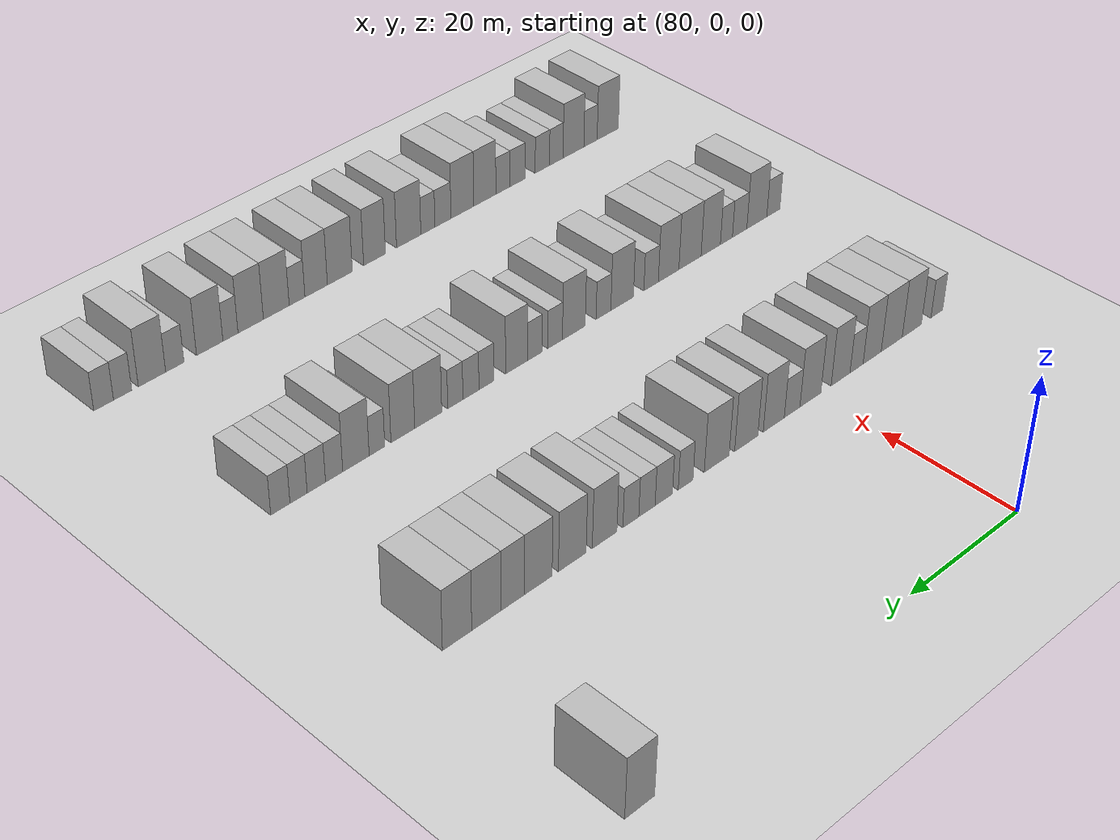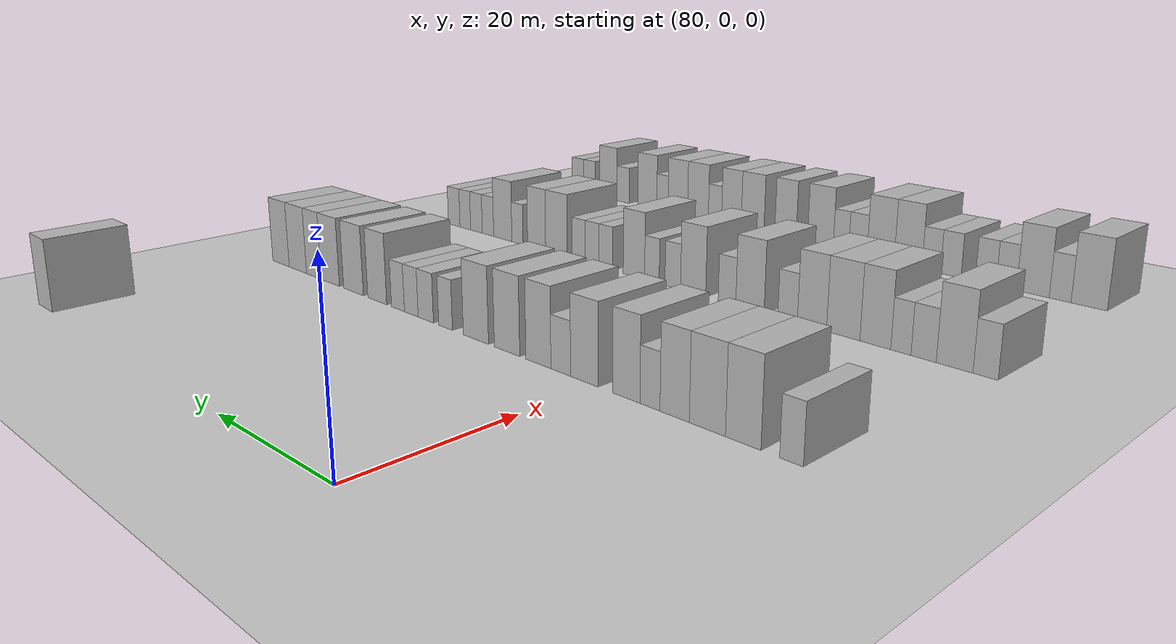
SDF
<sdf version="1.6">
 <world name="default">
  <include>
   <name>ground_plane_2</name>
   <uri>model://HANNAS_ground_plane</uri>
   <pose>100 0 0  0 0 0</pose>
  </include>
  <model name="building_579">
   <static>1</static>
   <pose>85.0000 64.0265 0 0.000000 0.000000 0.000000</pose>
   <link name="link">
    <pose>0 0 4.50 0 0 0</pose>
    <collision name="collision"><geometry><box><size>10.0000 4.3889 9.0000</size></box></geometry></collision>
    <visual name="visual">
     <cast_shadows>0</cast_shadows>
     <geometry><box><size>10.0000 4.3889 9.0000</size></box></geometry>
     <material>
      <script>
       <uri>model://HANNAS_wall/materials/scripts</uri>
       <uri>model://HANNAS_wall/materials/textures</uri>
       <name>vrc/HANNAS_wall</name>
      </script>
     </material>
    </visual>
   </link>
  </model>
  <model name="building_792">
   <static>1</static>
   <pose>115.0000 -23.9826 0 0.000000 0.000000 0.000000</pose>
   <link name="link">
    <pose>0 0 3.00 0 0 0</pose>
    <collision name="collision"><geometry><box><size>10.0000 2.4876 6.0000</size></box></geometry></collision>
    <visual name="visual">
     <cast_shadows>0</cast_shadows>
     <geometry><box><size>10.0000 2.4876 6.0000</size></box></geometry>
     <material>
      <script>
       <uri>model://HANNAS_wall/materials/scripts</uri>
       <uri>model://HANNAS_wall/materials/textures</uri>
       <name>vrc/HANNAS_wall</name>
      </script>
     </material>
    </visual>
   </link>
  </model>
  <model name="building_793">
   <static>1</static>
   <pose>115.0000 -18.7498 0 0.000000 0.000000 0.000000</pose>
   <link name="link">
    <pose>0 0 4.50 0 0 0</pose>
    <collision name="collision"><geometry><box><size>10.0000 3.9781 9.0000</size></box></geometry></collision>
    <visual name="visual">
     <cast_shadows>0</cast_shadows>
     <geometry><box><size>10.0000 3.9781 9.0000</size></box></geometry>
     <material>
      <script>
       <uri>model://HANNAS_wall/materials/scripts</uri>
       <uri>model://HANNAS_wall/materials/textures</uri>
       <name>vrc/HANNAS_wall</name>
      </script>
     </material>
    </visual>
   </link>
  </model>
  <model name="building_794">
   <static>1</static>
   <pose>115.0000 -14.6204 0 0.000000 0.000000 0.000000</pose>
   <link name="link">
    <pose>0 0 4.50 0 0 0</pose>
    <collision name="collision"><geometry><box><size>10.0000 4.2806 9.0000</size></box></geometry></collision>
    <visual name="visual">
     <cast_shadows>0</cast_shadows>
     <geometry><box><size>10.0000 4.2806 9.0000</size></box></geometry>
     <material>
      <script>
       <uri>model://HANNAS_wall/materials/scripts</uri>
       <uri>model://HANNAS_wall/materials/textures</uri>
       <name>vrc/HANNAS_wall</name>
      </script>
     </material>
    </visual>
   </link>
  </model>
  <model name="building_795">
   <static>1</static>
   <pose>115.0000 -10.6556 0 0.000000 0.000000 0.000000</pose>
   <link name="link">
    <pose>0 0 4.50 0 0 0</pose>
    <collision name="collision"><geometry><box><size>10.0000 3.6491 9.0000</size></box></geometry></collision>
    <visual name="visual">
     <cast_shadows>0</cast_shadows>
     <geometry><box><size>10.0000 3.6491 9.0000</size></box></geometry>
     <material>
      <script>
       <uri>model://HANNAS_wall/materials/scripts</uri>
       <uri>model://HANNAS_wall/materials/textures</uri>
       <name>vrc/HANNAS_wall</name>
      </script>
     </material>
    </visual>
   </link>
  </model>
  <model name="building_796">
   <static>1</static>
   <pose>115.0000 -7.5349 0 0.000000 0.000000 0.000000</pose>
   <link name="link">
    <pose>0 0 3.00 0 0 0</pose>
    <collision name="collision"><geometry><box><size>10.0000 2.5921 6.0000</size></box></geometry></collision>
    <visual name="visual">
     <cast_shadows>0</cast_shadows>
     <geometry><box><size>10.0000 2.5921 6.0000</size></box></geometry>
     <material>
      <script>
       <uri>model://HANNAS_wall/materials/scripts</uri>
       <uri>model://HANNAS_wall/materials/textures</uri>
       <name>vrc/HANNAS_wall</name>
      </script>
     </material>
    </visual>
   </link>
  </model>
  <model name="building_797">
   <static>1</static>
   <pose>115.0000 -4.3866 0 0.000000 0.000000 0.000000</pose>
   <link name="link">
    <pose>0 0 4.50 0 0 0</pose>
    <collision name="collision"><geometry><box><size>10.0000 3.7046 9.0000</size></box></geometry></collision>
    <visual name="visual">
     <cast_shadows>0</cast_shadows>
     <geometry><box><size>10.0000 3.7046 9.0000</size></box></geometry>
     <material>
      <script>
       <uri>model://HANNAS_wall/materials/scripts</uri>
       <uri>model://HANNAS_wall/materials/textures</uri>
       <name>vrc/HANNAS_wall</name>
      </script>
     </material>
    </visual>
   </link>
  </model>
  <model name="building_798">
   <static>1</static>
   <pose>115.0000 1.4691 0 0.000000 0.000000 0.000000</pose>
   <link name="link">
    <pose>0 0 4.50 0 0 0</pose>
    <collision name="collision"><geometry><box><size>10.0000 4.0068 9.0000</size></box></geometry></collision>
    <visual name="visual">
     <cast_shadows>0</cast_shadows>
     <geometry><box><size>10.0000 4.0068 9.0000</size></box></geometry>
     <material>
      <script>
       <uri>model://HANNAS_wall/materials/scripts</uri>
       <uri>model://HANNAS_wall/materials/textures</uri>
       <name>vrc/HANNAS_wall</name>
      </script>
     </material>
    </visual>
   </link>
  </model>
  <model name="building_799">
   <static>1</static>
   <pose>115.0000 4.9550 0 0.000000 0.000000 0.000000</pose>
   <link name="link">
    <pose>0 0 3.00 0 0 0</pose>
    <collision name="collision"><geometry><box><size>10.0000 2.9650 6.0000</size></box></geometry></collision>
    <visual name="visual">
     <cast_shadows>0</cast_shadows>
     <geometry><box><size>10.0000 2.9650 6.0000</size></box></geometry>
     <material>
      <script>
       <uri>model://HANNAS_wall/materials/scripts</uri>
       <uri>model://HANNAS_wall/materials/textures</uri>
       <name>vrc/HANNAS_wall</name>
      </script>
     </material>
    </visual>
   </link>
  </model>
  <model name="building_800">
   <static>1</static>
   <pose>115.0000 8.4011 0 0.000000 0.000000 0.000000</pose>
   <link name="link">
    <pose>0 0 4.50 0 0 0</pose>
    <collision name="collision"><geometry><box><size>10.0000 3.9271 9.0000</size></box></geometry></collision>
    <visual name="visual">
     <cast_shadows>0</cast_shadows>
     <geometry><box><size>10.0000 3.9271 9.0000</size></box></geometry>
     <material>
      <script>
       <uri>model://HANNAS_wall/materials/scripts</uri>
       <uri>model://HANNAS_wall/materials/textures</uri>
       <name>vrc/HANNAS_wall</name>
      </script>
     </material>
    </visual>
   </link>
  </model>
  <model name="building_801">
   <static>1</static>
   <pose>115.0000 13.4801 0 0.000000 0.000000 0.000000</pose>
   <link name="link">
    <pose>0 0 4.50 0 0 0</pose>
    <collision name="collision"><geometry><box><size>10.0000 4.2310 9.0000</size></box></geometry></collision>
    <visual name="visual">
     <cast_shadows>0</cast_shadows>
     <geometry><box><size>10.0000 4.2310 9.0000</size></box></geometry>
     <material>
      <script>
       <uri>model://HANNAS_wall/materials/scripts</uri>
       <uri>model://HANNAS_wall/materials/textures</uri>
       <name>vrc/HANNAS_wall</name>
      </script>
     </material>
    </visual>
   </link>
  </model>
  <model name="building_802">
   <static>1</static>
   <pose>115.0000 18.8192 0 0.000000 0.000000 0.000000</pose>
   <link name="link">
    <pose>0 0 4.50 0 0 0</pose>
    <collision name="collision"><geometry><box><size>10.0000 4.4473 9.0000</size></box></geometry></collision>
    <visual name="visual">
     <cast_shadows>0</cast_shadows>
     <geometry><box><size>10.0000 4.4473 9.0000</size></box></geometry>
     <material>
      <script>
       <uri>model://HANNAS_wall/materials/scripts</uri>
       <uri>model://HANNAS_wall/materials/textures</uri>
       <name>vrc/HANNAS_wall</name>
      </script>
     </material>
    </visual>
   </link>
  </model>
  <model name="building_803">
   <static>1</static>
   <pose>115.0000 24.3301 0 0.000000 0.000000 0.000000</pose>
   <link name="link">
    <pose>0 0 3.00 0 0 0</pose>
    <collision name="collision"><geometry><box><size>10.0000 2.5745 6.0000</size></box></geometry></collision>
    <visual name="visual">
     <cast_shadows>0</cast_shadows>
     <geometry><box><size>10.0000 2.5745 6.0000</size></box></geometry>
     <material>
      <script>
       <uri>model://HANNAS_wall/materials/scripts</uri>
       <uri>model://HANNAS_wall/materials/textures</uri>
       <name>vrc/HANNAS_wall</name>
      </script>
     </material>
    </visual>
   </link>
  </model>
  <model name="building_804">
   <static>1</static>
   <pose>115.0000 28.1102 0 0.000000 0.000000 0.000000</pose>
   <link name="link">
    <pose>0 0 3.00 0 0 0</pose>
    <collision name="collision"><geometry><box><size>10.0000 2.9857 6.0000</size></box></geometry></collision>
    <visual name="visual">
     <cast_shadows>0</cast_shadows>
     <geometry><box><size>10.0000 2.9857 6.0000</size></box></geometry>
     <material>
      <script>
       <uri>model://HANNAS_wall/materials/scripts</uri>
       <uri>model://HANNAS_wall/materials/textures</uri>
       <name>vrc/HANNAS_wall</name>
      </script>
     </material>
    </visual>
   </link>
  </model>
  <model name="building_805">
   <static>1</static>
   <pose>115.0000 30.9872 0 0.000000 0.000000 0.000000</pose>
   <link name="link">
    <pose>0 0 3.00 0 0 0</pose>
    <collision name="collision"><geometry><box><size>10.0000 2.7683 6.0000</size></box></geometry></collision>
    <visual name="visual">
     <cast_shadows>0</cast_shadows>
     <geometry><box><size>10.0000 2.7683 6.0000</size></box></geometry>
     <material>
      <script>
       <uri>model://HANNAS_wall/materials/scripts</uri>
       <uri>model://HANNAS_wall/materials/textures</uri>
       <name>vrc/HANNAS_wall</name>
      </script>
     </material>
    </visual>
   </link>
  </model>
  <model name="building_806">
   <static>1</static>
   <pose>115.0000 33.7061 0 0.000000 0.000000 0.000000</pose>
   <link name="link">
    <pose>0 0 3.00 0 0 0</pose>
    <collision name="collision"><geometry><box><size>10.0000 2.6695 6.0000</size></box></geometry></collision>
    <visual name="visual">
     <cast_shadows>0</cast_shadows>
     <geometry><box><size>10.0000 2.6695 6.0000</size></box></geometry>
     <material>
      <script>
       <uri>model://HANNAS_wall/materials/scripts</uri>
       <uri>model://HANNAS_wall/materials/textures</uri>
       <name>vrc/HANNAS_wall</name>
      </script>
     </material>
    </visual>
   </link>
  </model>
  <model name="building_807">
   <static>1</static>
   <pose>115.0000 38.0735 0 0.000000 0.000000 0.000000</pose>
   <link name="link">
    <pose>0 0 4.50 0 0 0</pose>
    <collision name="collision"><geometry><box><size>10.0000 4.0654 9.0000</size></box></geometry></collision>
    <visual name="visual">
     <cast_shadows>0</cast_shadows>
     <geometry><box><size>10.0000 4.0654 9.0000</size></box></geometry>
     <material>
      <script>
       <uri>model://HANNAS_wall/materials/scripts</uri>
       <uri>model://HANNAS_wall/materials/textures</uri>
       <name>vrc/HANNAS_wall</name>
      </script>
     </material>
    </visual>
   </link>
  </model>
  <model name="building_808">
   <static>1</static>
   <pose>115.0000 43.3395 0 0.000000 0.000000 0.000000</pose>
   <link name="link">
    <pose>0 0 4.50 0 0 0</pose>
    <collision name="collision"><geometry><box><size>10.0000 4.4666 9.0000</size></box></geometry></collision>
    <visual name="visual">
     <cast_shadows>0</cast_shadows>
     <geometry><box><size>10.0000 4.4666 9.0000</size></box></geometry>
     <material>
      <script>
       <uri>model://HANNAS_wall/materials/scripts</uri>
       <uri>model://HANNAS_wall/materials/textures</uri>
       <name>vrc/HANNAS_wall</name>
      </script>
     </material>
    </visual>
   </link>
  </model>
  <model name="building_809">
   <static>1</static>
   <pose>115.0000 48.7580 0 0.000000 0.000000 0.000000</pose>
   <link name="link">
    <pose>0 0 4.50 0 0 0</pose>
    <collision name="collision"><geometry><box><size>10.0000 4.3704 9.0000</size></box></geometry></collision>
    <visual name="visual">
     <cast_shadows>0</cast_shadows>
     <geometry><box><size>10.0000 4.3704 9.0000</size></box></geometry>
     <material>
      <script>
       <uri>model://HANNAS_wall/materials/scripts</uri>
       <uri>model://HANNAS_wall/materials/textures</uri>
       <name>vrc/HANNAS_wall</name>
      </script>
     </material>
    </visual>
   </link>
  </model>
  <model name="building_810">
   <static>1</static>
   <pose>115.0000 52.7483 0 0.000000 0.000000 0.000000</pose>
   <link name="link">
    <pose>0 0 4.50 0 0 0</pose>
    <collision name="collision"><geometry><box><size>10.0000 3.6101 9.0000</size></box></geometry></collision>
    <visual name="visual">
     <cast_shadows>0</cast_shadows>
     <geometry><box><size>10.0000 3.6101 9.0000</size></box></geometry>
     <material>
      <script>
       <uri>model://HANNAS_wall/materials/scripts</uri>
       <uri>model://HANNAS_wall/materials/textures</uri>
       <name>vrc/HANNAS_wall</name>
      </script>
     </material>
    </visual>
   </link>
  </model>
  <model name="building_811">
   <static>1</static>
   <pose>115.0000 56.7813 0 0.000000 0.000000 0.000000</pose>
   <link name="link">
    <pose>0 0 4.50 0 0 0</pose>
    <collision name="collision"><geometry><box><size>10.0000 4.4560 9.0000</size></box></geometry></collision>
    <visual name="visual">
     <cast_shadows>0</cast_shadows>
     <geometry><box><size>10.0000 4.4560 9.0000</size></box></geometry>
     <material>
      <script>
       <uri>model://HANNAS_wall/materials/scripts</uri>
       <uri>model://HANNAS_wall/materials/textures</uri>
       <name>vrc/HANNAS_wall</name>
      </script>
     </material>
    </visual>
   </link>
  </model>
  <model name="building_812">
   <static>1</static>
   <pose>115.0000 61.1942 0 0.000000 0.000000 0.000000</pose>
   <link name="link">
    <pose>0 0 4.50 0 0 0</pose>
    <collision name="collision"><geometry><box><size>10.0000 4.3697 9.0000</size></box></geometry></collision>
    <visual name="visual">
     <cast_shadows>0</cast_shadows>
     <geometry><box><size>10.0000 4.3697 9.0000</size></box></geometry>
     <material>
      <script>
       <uri>model://HANNAS_wall/materials/scripts</uri>
       <uri>model://HANNAS_wall/materials/textures</uri>
       <name>vrc/HANNAS_wall</name>
      </script>
     </material>
    </visual>
   </link>
  </model>
  <model name="building_1002">
   <static>1</static>
   <pose>145.0000 -26.4612 0 0.000000 0.000000 0.000000</pose>
   <link name="link">
    <pose>0 0 3.00 0 0 0</pose>
    <collision name="collision"><geometry><box><size>10.0000 2.7451 6.0000</size></box></geometry></collision>
    <visual name="visual">
     <cast_shadows>0</cast_shadows>
     <geometry><box><size>10.0000 2.7451 6.0000</size></box></geometry>
     <material>
      <script>
       <uri>model://HANNAS_wall/materials/scripts</uri>
       <uri>model://HANNAS_wall/materials/textures</uri>
       <name>vrc/HANNAS_wall</name>
      </script>
     </material>
    </visual>
   </link>
  </model>
  <model name="building_1003">
   <static>1</static>
   <pose>145.0000 -23.0076 0 0.000000 0.000000 0.000000</pose>
   <link name="link">
    <pose>0 0 4.50 0 0 0</pose>
    <collision name="collision"><geometry><box><size>10.0000 4.1621 9.0000</size></box></geometry></collision>
    <visual name="visual">
     <cast_shadows>0</cast_shadows>
     <geometry><box><size>10.0000 4.1621 9.0000</size></box></geometry>
     <material>
      <script>
       <uri>model://HANNAS_wall/materials/scripts</uri>
       <uri>model://HANNAS_wall/materials/textures</uri>
       <name>vrc/HANNAS_wall</name>
      </script>
     </material>
    </visual>
   </link>
  </model>
  <model name="building_1004">
   <static>1</static>
   <pose>145.0000 -19.4413 0 0.000000 0.000000 0.000000</pose>
   <link name="link">
    <pose>0 0 3.00 0 0 0</pose>
    <collision name="collision"><geometry><box><size>10.0000 2.9705 6.0000</size></box></geometry></collision>
    <visual name="visual">
     <cast_shadows>0</cast_shadows>
     <geometry><box><size>10.0000 2.9705 6.0000</size></box></geometry>
     <material>
      <script>
       <uri>model://HANNAS_wall/materials/scripts</uri>
       <uri>model://HANNAS_wall/materials/textures</uri>
       <name>vrc/HANNAS_wall</name>
      </script>
     </material>
    </visual>
   </link>
  </model>
  <model name="building_1005">
   <static>1</static>
   <pose>145.0000 -16.7261 0 0.000000 0.000000 0.000000</pose>
   <link name="link">
    <pose>0 0 3.00 0 0 0</pose>
    <collision name="collision"><geometry><box><size>10.0000 2.4598 6.0000</size></box></geometry></collision>
    <visual name="visual">
     <cast_shadows>0</cast_shadows>
     <geometry><box><size>10.0000 2.4598 6.0000</size></box></geometry>
     <material>
      <script>
       <uri>model://HANNAS_wall/materials/scripts</uri>
       <uri>model://HANNAS_wall/materials/textures</uri>
       <name>vrc/HANNAS_wall</name>
      </script>
     </material>
    </visual>
   </link>
  </model>
  <model name="building_1006">
   <static>1</static>
   <pose>145.0000 -13.5506 0 0.000000 0.000000 0.000000</pose>
   <link name="link">
    <pose>0 0 4.50 0 0 0</pose>
    <collision name="collision"><geometry><box><size>10.0000 3.8911 9.0000</size></box></geometry></collision>
    <visual name="visual">
     <cast_shadows>0</cast_shadows>
     <geometry><box><size>10.0000 3.8911 9.0000</size></box></geometry>
     <material>
      <script>
       <uri>model://HANNAS_wall/materials/scripts</uri>
       <uri>model://HANNAS_wall/materials/textures</uri>
       <name>vrc/HANNAS_wall</name>
      </script>
     </material>
    </visual>
   </link>
  </model>
  <model name="building_1007">
   <static>1</static>
   <pose>145.0000 -9.4038 0 0.000000 0.000000 0.000000</pose>
   <link name="link">
    <pose>0 0 4.50 0 0 0</pose>
    <collision name="collision"><geometry><box><size>10.0000 4.4026 9.0000</size></box></geometry></collision>
    <visual name="visual">
     <cast_shadows>0</cast_shadows>
     <geometry><box><size>10.0000 4.4026 9.0000</size></box></geometry>
     <material>
      <script>
       <uri>model://HANNAS_wall/materials/scripts</uri>
       <uri>model://HANNAS_wall/materials/textures</uri>
       <name>vrc/HANNAS_wall</name>
      </script>
     </material>
    </visual>
   </link>
  </model>
  <model name="building_1008">
   <static>1</static>
   <pose>145.0000 -5.1908 0 0.000000 0.000000 0.000000</pose>
   <link name="link">
    <pose>0 0 4.50 0 0 0</pose>
    <collision name="collision"><geometry><box><size>10.0000 4.0234 9.0000</size></box></geometry></collision>
    <visual name="visual">
     <cast_shadows>0</cast_shadows>
     <geometry><box><size>10.0000 4.0234 9.0000</size></box></geometry>
     <material>
      <script>
       <uri>model://HANNAS_wall/materials/scripts</uri>
       <uri>model://HANNAS_wall/materials/textures</uri>
       <name>vrc/HANNAS_wall</name>
      </script>
     </material>
    </visual>
   </link>
  </model>
  <model name="building_1009">
   <static>1</static>
   <pose>145.0000 -1.7837 0 0.000000 0.000000 0.000000</pose>
   <link name="link">
    <pose>0 0 3.00 0 0 0</pose>
    <collision name="collision"><geometry><box><size>10.0000 2.7908 6.0000</size></box></geometry></collision>
    <visual name="visual">
     <cast_shadows>0</cast_shadows>
     <geometry><box><size>10.0000 2.7908 6.0000</size></box></geometry>
     <material>
      <script>
       <uri>model://HANNAS_wall/materials/scripts</uri>
       <uri>model://HANNAS_wall/materials/textures</uri>
       <name>vrc/HANNAS_wall</name>
      </script>
     </material>
    </visual>
   </link>
  </model>
  <model name="building_1010">
   <static>1</static>
   <pose>145.0000 3.7500 0 0.000000 0.000000 0.000000</pose>
   <link name="link">
    <pose>0 0 4.50 0 0 0</pose>
    <collision name="collision"><geometry><box><size>10.0000 4.2766 9.0000</size></box></geometry></collision>
    <visual name="visual">
     <cast_shadows>0</cast_shadows>
     <geometry><box><size>10.0000 4.2766 9.0000</size></box></geometry>
     <material>
      <script>
       <uri>model://HANNAS_wall/materials/scripts</uri>
       <uri>model://HANNAS_wall/materials/textures</uri>
       <name>vrc/HANNAS_wall</name>
      </script>
     </material>
    </visual>
   </link>
  </model>
  <model name="building_1011">
   <static>1</static>
   <pose>145.0000 7.2660 0 0.000000 0.000000 0.000000</pose>
   <link name="link">
    <pose>0 0 3.00 0 0 0</pose>
    <collision name="collision"><geometry><box><size>10.0000 2.7556 6.0000</size></box></geometry></collision>
    <visual name="visual">
     <cast_shadows>0</cast_shadows>
     <geometry><box><size>10.0000 2.7556 6.0000</size></box></geometry>
     <material>
      <script>
       <uri>model://HANNAS_wall/materials/scripts</uri>
       <uri>model://HANNAS_wall/materials/textures</uri>
       <name>vrc/HANNAS_wall</name>
      </script>
     </material>
    </visual>
   </link>
  </model>
  <model name="building_1012">
   <static>1</static>
   <pose>145.0000 12.7238 0 0.000000 0.000000 0.000000</pose>
   <link name="link">
    <pose>0 0 4.50 0 0 0</pose>
    <collision name="collision"><geometry><box><size>10.0000 4.1600 9.0000</size></box></geometry></collision>
    <visual name="visual">
     <cast_shadows>0</cast_shadows>
     <geometry><box><size>10.0000 4.1600 9.0000</size></box></geometry>
     <material>
      <script>
       <uri>model://HANNAS_wall/materials/scripts</uri>
       <uri>model://HANNAS_wall/materials/textures</uri>
       <name>vrc/HANNAS_wall</name>
      </script>
     </material>
    </visual>
   </link>
  </model>
  <model name="building_1013">
   <static>1</static>
   <pose>145.0000 16.1285 0 0.000000 0.000000 0.000000</pose>
   <link name="link">
    <pose>0 0 3.00 0 0 0</pose>
    <collision name="collision"><geometry><box><size>10.0000 2.6494 6.0000</size></box></geometry></collision>
    <visual name="visual">
     <cast_shadows>0</cast_shadows>
     <geometry><box><size>10.0000 2.6494 6.0000</size></box></geometry>
     <material>
      <script>
       <uri>model://HANNAS_wall/materials/scripts</uri>
       <uri>model://HANNAS_wall/materials/textures</uri>
       <name>vrc/HANNAS_wall</name>
      </script>
     </material>
    </visual>
   </link>
  </model>
  <model name="building_1014">
   <static>1</static>
   <pose>145.0000 19.7431 0 0.000000 0.000000 0.000000</pose>
   <link name="link">
    <pose>0 0 3.00 0 0 0</pose>
    <collision name="collision"><geometry><box><size>10.0000 2.5797 6.0000</size></box></geometry></collision>
    <visual name="visual">
     <cast_shadows>0</cast_shadows>
     <geometry><box><size>10.0000 2.5797 6.0000</size></box></geometry>
     <material>
      <script>
       <uri>model://HANNAS_wall/materials/scripts</uri>
       <uri>model://HANNAS_wall/materials/textures</uri>
       <name>vrc/HANNAS_wall</name>
      </script>
     </material>
    </visual>
   </link>
  </model>
  <model name="building_1015">
   <static>1</static>
   <pose>145.0000 22.9806 0 0.000000 0.000000 0.000000</pose>
   <link name="link">
    <pose>0 0 4.50 0 0 0</pose>
    <collision name="collision"><geometry><box><size>10.0000 3.8953 9.0000</size></box></geometry></collision>
    <visual name="visual">
     <cast_shadows>0</cast_shadows>
     <geometry><box><size>10.0000 3.8953 9.0000</size></box></geometry>
     <material>
      <script>
       <uri>model://HANNAS_wall/materials/scripts</uri>
       <uri>model://HANNAS_wall/materials/textures</uri>
       <name>vrc/HANNAS_wall</name>
      </script>
     </material>
    </visual>
   </link>
  </model>
  <model name="building_1016">
   <static>1</static>
   <pose>145.0000 28.2254 0 0.000000 0.000000 0.000000</pose>
   <link name="link">
    <pose>0 0 3.00 0 0 0</pose>
    <collision name="collision"><geometry><box><size>10.0000 2.5943 6.0000</size></box></geometry></collision>
    <visual name="visual">
     <cast_shadows>0</cast_shadows>
     <geometry><box><size>10.0000 2.5943 6.0000</size></box></geometry>
     <material>
      <script>
       <uri>model://HANNAS_wall/materials/scripts</uri>
       <uri>model://HANNAS_wall/materials/textures</uri>
       <name>vrc/HANNAS_wall</name>
      </script>
     </material>
    </visual>
   </link>
  </model>
  <model name="building_1017">
   <static>1</static>
   <pose>145.0000 30.8859 0 0.000000 0.000000 0.000000</pose>
   <link name="link">
    <pose>0 0 3.00 0 0 0</pose>
    <collision name="collision"><geometry><box><size>10.0000 2.7268 6.0000</size></box></geometry></collision>
    <visual name="visual">
     <cast_shadows>0</cast_shadows>
     <geometry><box><size>10.0000 2.7268 6.0000</size></box></geometry>
     <material>
      <script>
       <uri>model://HANNAS_wall/materials/scripts</uri>
       <uri>model://HANNAS_wall/materials/textures</uri>
       <name>vrc/HANNAS_wall</name>
      </script>
     </material>
    </visual>
   </link>
  </model>
  <model name="building_1018">
   <static>1</static>
   <pose>145.0000 33.5300 0 0.000000 0.000000 0.000000</pose>
   <link name="link">
    <pose>0 0 3.00 0 0 0</pose>
    <collision name="collision"><geometry><box><size>10.0000 2.5614 6.0000</size></box></geometry></collision>
    <visual name="visual">
     <cast_shadows>0</cast_shadows>
     <geometry><box><size>10.0000 2.5614 6.0000</size></box></geometry>
     <material>
      <script>
       <uri>model://HANNAS_wall/materials/scripts</uri>
       <uri>model://HANNAS_wall/materials/textures</uri>
       <name>vrc/HANNAS_wall</name>
      </script>
     </material>
    </visual>
   </link>
  </model>
  <model name="building_1019">
   <static>1</static>
   <pose>145.0000 38.0429 0 0.000000 0.000000 0.000000</pose>
   <link name="link">
    <pose>0 0 4.50 0 0 0</pose>
    <collision name="collision"><geometry><box><size>10.0000 4.4644 9.0000</size></box></geometry></collision>
    <visual name="visual">
     <cast_shadows>0</cast_shadows>
     <geometry><box><size>10.0000 4.4644 9.0000</size></box></geometry>
     <material>
      <script>
       <uri>model://HANNAS_wall/materials/scripts</uri>
       <uri>model://HANNAS_wall/materials/textures</uri>
       <name>vrc/HANNAS_wall</name>
      </script>
     </material>
    </visual>
   </link>
  </model>
  <model name="building_1020">
   <static>1</static>
   <pose>145.0000 42.2119 0 0.000000 0.000000 0.000000</pose>
   <link name="link">
    <pose>0 0 4.50 0 0 0</pose>
    <collision name="collision"><geometry><box><size>10.0000 3.8736 9.0000</size></box></geometry></collision>
    <visual name="visual">
     <cast_shadows>0</cast_shadows>
     <geometry><box><size>10.0000 3.8736 9.0000</size></box></geometry>
     <material>
      <script>
       <uri>model://HANNAS_wall/materials/scripts</uri>
       <uri>model://HANNAS_wall/materials/textures</uri>
       <name>vrc/HANNAS_wall</name>
      </script>
     </material>
    </visual>
   </link>
  </model>
  <model name="building_1021">
   <static>1</static>
   <pose>145.0000 46.3951 0 0.000000 0.000000 0.000000</pose>
   <link name="link">
    <pose>0 0 3.00 0 0 0</pose>
    <collision name="collision"><geometry><box><size>10.0000 2.4928 6.0000</size></box></geometry></collision>
    <visual name="visual">
     <cast_shadows>0</cast_shadows>
     <geometry><box><size>10.0000 2.4928 6.0000</size></box></geometry>
     <material>
      <script>
       <uri>model://HANNAS_wall/materials/scripts</uri>
       <uri>model://HANNAS_wall/materials/textures</uri>
       <name>vrc/HANNAS_wall</name>
      </script>
     </material>
    </visual>
   </link>
  </model>
  <model name="building_1022">
   <static>1</static>
   <pose>145.0000 49.7278 0 0.000000 0.000000 0.000000</pose>
   <link name="link">
    <pose>0 0 4.50 0 0 0</pose>
    <collision name="collision"><geometry><box><size>10.0000 4.1728 9.0000</size></box></geometry></collision>
    <visual name="visual">
     <cast_shadows>0</cast_shadows>
     <geometry><box><size>10.0000 4.1728 9.0000</size></box></geometry>
     <material>
      <script>
       <uri>model://HANNAS_wall/materials/scripts</uri>
       <uri>model://HANNAS_wall/materials/textures</uri>
       <name>vrc/HANNAS_wall</name>
      </script>
     </material>
    </visual>
   </link>
  </model>
  <model name="building_1023">
   <static>1</static>
   <pose>145.0000 53.1578 0 0.000000 0.000000 0.000000</pose>
   <link name="link">
    <pose>0 0 3.00 0 0 0</pose>
    <collision name="collision"><geometry><box><size>10.0000 2.6871 6.0000</size></box></geometry></collision>
    <visual name="visual">
     <cast_shadows>0</cast_shadows>
     <geometry><box><size>10.0000 2.6871 6.0000</size></box></geometry>
     <material>
      <script>
       <uri>model://HANNAS_wall/materials/scripts</uri>
       <uri>model://HANNAS_wall/materials/textures</uri>
       <name>vrc/HANNAS_wall</name>
      </script>
     </material>
    </visual>
   </link>
  </model>
  <model name="building_1024">
   <static>1</static>
   <pose>145.0000 55.9098 0 0.000000 0.000000 0.000000</pose>
   <link name="link">
    <pose>0 0 3.00 0 0 0</pose>
    <collision name="collision"><geometry><box><size>10.0000 2.8169 6.0000</size></box></geometry></collision>
    <visual name="visual">
     <cast_shadows>0</cast_shadows>
     <geometry><box><size>10.0000 2.8169 6.0000</size></box></geometry>
     <material>
      <script>
       <uri>model://HANNAS_wall/materials/scripts</uri>
       <uri>model://HANNAS_wall/materials/textures</uri>
       <name>vrc/HANNAS_wall</name>
      </script>
     </material>
    </visual>
   </link>
  </model>
  <model name="building_1025">
   <static>1</static>
   <pose>145.0000 58.6270 0 0.000000 0.000000 0.000000</pose>
   <link name="link">
    <pose>0 0 3.00 0 0 0</pose>
    <collision name="collision"><geometry><box><size>10.0000 2.6175 6.0000</size></box></geometry></collision>
    <visual name="visual">
     <cast_shadows>0</cast_shadows>
     <geometry><box><size>10.0000 2.6175 6.0000</size></box></geometry>
     <material>
      <script>
       <uri>model://HANNAS_wall/materials/scripts</uri>
       <uri>model://HANNAS_wall/materials/textures</uri>
       <name>vrc/HANNAS_wall</name>
      </script>
     </material>
    </visual>
   </link>
  </model>
  <model name="building_1026">
   <static>1</static>
   <pose>145.0000 61.3862 0 0.000000 0.000000 0.000000</pose>
   <link name="link">
    <pose>0 0 3.00 0 0 0</pose>
    <collision name="collision"><geometry><box><size>10.0000 2.9009 6.0000</size></box></geometry></collision>
    <visual name="visual">
     <cast_shadows>0</cast_shadows>
     <geometry><box><size>10.0000 2.9009 6.0000</size></box></geometry>
     <material>
      <script>
       <uri>model://HANNAS_wall/materials/scripts</uri>
       <uri>model://HANNAS_wall/materials/textures</uri>
       <name>vrc/HANNAS_wall</name>
      </script>
     </material>
    </visual>
   </link>
  </model>
  <model name="building_1238">
   <static>1</static>
   <pose>175.0000 -24.6304 0 0.000000 0.000000 0.000000</pose>
   <link name="link">
    <pose>0 0 4.50 0 0 0</pose>
    <collision name="collision"><geometry><box><size>10.0000 4.4018 9.0000</size></box></geometry></collision>
    <visual name="visual">
     <cast_shadows>0</cast_shadows>
     <geometry><box><size>10.0000 4.4018 9.0000</size></box></geometry>
     <material>
      <script>
       <uri>model://HANNAS_wall/materials/scripts</uri>
       <uri>model://HANNAS_wall/materials/textures</uri>
       <name>vrc/HANNAS_wall</name>
      </script>
     </material>
    </visual>
   </link>
  </model>
  <model name="building_1239">
   <static>1</static>
   <pose>175.0000 -21.0581 0 0.000000 0.000000 0.000000</pose>
   <link name="link">
    <pose>0 0 3.00 0 0 0</pose>
    <collision name="collision"><geometry><box><size>10.0000 2.7430 6.0000</size></box></geometry></collision>
    <visual name="visual">
     <cast_shadows>0</cast_shadows>
     <geometry><box><size>10.0000 2.7430 6.0000</size></box></geometry>
     <material>
      <script>
       <uri>model://HANNAS_wall/materials/scripts</uri>
       <uri>model://HANNAS_wall/materials/textures</uri>
       <name>vrc/HANNAS_wall</name>
      </script>
     </material>
    </visual>
   </link>
  </model>
  <model name="building_1240">
   <static>1</static>
   <pose>175.0000 -17.5665 0 0.000000 0.000000 0.000000</pose>
   <link name="link">
    <pose>0 0 4.50 0 0 0</pose>
    <collision name="collision"><geometry><box><size>10.0000 4.2402 9.0000</size></box></geometry></collision>
    <visual name="visual">
     <cast_shadows>0</cast_shadows>
     <geometry><box><size>10.0000 4.2402 9.0000</size></box></geometry>
     <material>
      <script>
       <uri>model://HANNAS_wall/materials/scripts</uri>
       <uri>model://HANNAS_wall/materials/textures</uri>
       <name>vrc/HANNAS_wall</name>
      </script>
     </material>
    </visual>
   </link>
  </model>
  <model name="building_1241">
   <static>1</static>
   <pose>175.0000 -14.0798 0 0.000000 0.000000 0.000000</pose>
   <link name="link">
    <pose>0 0 3.00 0 0 0</pose>
    <collision name="collision"><geometry><box><size>10.0000 2.7332 6.0000</size></box></geometry></collision>
    <visual name="visual">
     <cast_shadows>0</cast_shadows>
     <geometry><box><size>10.0000 2.7332 6.0000</size></box></geometry>
     <material>
      <script>
       <uri>model://HANNAS_wall/materials/scripts</uri>
       <uri>model://HANNAS_wall/materials/textures</uri>
       <name>vrc/HANNAS_wall</name>
      </script>
     </material>
    </visual>
   </link>
  </model>
  <model name="building_1242">
   <static>1</static>
   <pose>175.0000 -11.2792 0 0.000000 0.000000 0.000000</pose>
   <link name="link">
    <pose>0 0 3.00 0 0 0</pose>
    <collision name="collision"><geometry><box><size>10.0000 2.8680 6.0000</size></box></geometry></collision>
    <visual name="visual">
     <cast_shadows>0</cast_shadows>
     <geometry><box><size>10.0000 2.8680 6.0000</size></box></geometry>
     <material>
      <script>
       <uri>model://HANNAS_wall/materials/scripts</uri>
       <uri>model://HANNAS_wall/materials/textures</uri>
       <name>vrc/HANNAS_wall</name>
      </script>
     </material>
    </visual>
   </link>
  </model>
  <model name="building_1243">
   <static>1</static>
   <pose>175.0000 -6.3679 0 0.000000 0.000000 0.000000</pose>
   <link name="link">
    <pose>0 0 3.00 0 0 0</pose>
    <collision name="collision"><geometry><box><size>10.0000 2.9544 6.0000</size></box></geometry></collision>
    <visual name="visual">
     <cast_shadows>0</cast_shadows>
     <geometry><box><size>10.0000 2.9544 6.0000</size></box></geometry>
     <material>
      <script>
       <uri>model://HANNAS_wall/materials/scripts</uri>
       <uri>model://HANNAS_wall/materials/textures</uri>
       <name>vrc/HANNAS_wall</name>
      </script>
     </material>
    </visual>
   </link>
  </model>
  <model name="building_1244">
   <static>1</static>
   <pose>175.0000 -3.5135 0 0.000000 0.000000 0.000000</pose>
   <link name="link">
    <pose>0 0 3.00 0 0 0</pose>
    <collision name="collision"><geometry><box><size>10.0000 2.7545 6.0000</size></box></geometry></collision>
    <visual name="visual">
     <cast_shadows>0</cast_shadows>
     <geometry><box><size>10.0000 2.7545 6.0000</size></box></geometry>
     <material>
      <script>
       <uri>model://HANNAS_wall/materials/scripts</uri>
       <uri>model://HANNAS_wall/materials/textures</uri>
       <name>vrc/HANNAS_wall</name>
      </script>
     </material>
    </visual>
   </link>
  </model>
  <model name="building_1245">
   <static>1</static>
   <pose>175.0000 -0.0137 0 0.000000 0.000000 0.000000</pose>
   <link name="link">
    <pose>0 0 4.50 0 0 0</pose>
    <collision name="collision"><geometry><box><size>10.0000 4.2450 9.0000</size></box></geometry></collision>
    <visual name="visual">
     <cast_shadows>0</cast_shadows>
     <geometry><box><size>10.0000 4.2450 9.0000</size></box></geometry>
     <material>
      <script>
       <uri>model://HANNAS_wall/materials/scripts</uri>
       <uri>model://HANNAS_wall/materials/textures</uri>
       <name>vrc/HANNAS_wall</name>
      </script>
     </material>
    </visual>
   </link>
  </model>
  <model name="building_1246">
   <static>1</static>
   <pose>175.0000 4.2610 0 0.000000 0.000000 0.000000</pose>
   <link name="link">
    <pose>0 0 4.50 0 0 0</pose>
    <collision name="collision"><geometry><box><size>10.0000 4.3045 9.0000</size></box></geometry></collision>
    <visual name="visual">
     <cast_shadows>0</cast_shadows>
     <geometry><box><size>10.0000 4.3045 9.0000</size></box></geometry>
     <material>
      <script>
       <uri>model://HANNAS_wall/materials/scripts</uri>
       <uri>model://HANNAS_wall/materials/textures</uri>
       <name>vrc/HANNAS_wall</name>
      </script>
     </material>
    </visual>
   </link>
  </model>
  <model name="building_1247">
   <static>1</static>
   <pose>175.0000 7.9091 0 0.000000 0.000000 0.000000</pose>
   <link name="link">
    <pose>0 0 3.00 0 0 0</pose>
    <collision name="collision"><geometry><box><size>10.0000 2.9919 6.0000</size></box></geometry></collision>
    <visual name="visual">
     <cast_shadows>0</cast_shadows>
     <geometry><box><size>10.0000 2.9919 6.0000</size></box></geometry>
     <material>
      <script>
       <uri>model://HANNAS_wall/materials/scripts</uri>
       <uri>model://HANNAS_wall/materials/textures</uri>
       <name>vrc/HANNAS_wall</name>
      </script>
     </material>
    </visual>
   </link>
  </model>
  <model name="building_1248">
   <static>1</static>
   <pose>175.0000 10.7073 0 0.000000 0.000000 0.000000</pose>
   <link name="link">
    <pose>0 0 3.00 0 0 0</pose>
    <collision name="collision"><geometry><box><size>10.0000 2.6045 6.0000</size></box></geometry></collision>
    <visual name="visual">
     <cast_shadows>0</cast_shadows>
     <geometry><box><size>10.0000 2.6045 6.0000</size></box></geometry>
     <material>
      <script>
       <uri>model://HANNAS_wall/materials/scripts</uri>
       <uri>model://HANNAS_wall/materials/textures</uri>
       <name>vrc/HANNAS_wall</name>
      </script>
     </material>
    </visual>
   </link>
  </model>
  <model name="building_1249">
   <static>1</static>
   <pose>175.0000 14.2338 0 0.000000 0.000000 0.000000</pose>
   <link name="link">
    <pose>0 0 4.50 0 0 0</pose>
    <collision name="collision"><geometry><box><size>10.0000 4.4485 9.0000</size></box></geometry></collision>
    <visual name="visual">
     <cast_shadows>0</cast_shadows>
     <geometry><box><size>10.0000 4.4485 9.0000</size></box></geometry>
     <material>
      <script>
       <uri>model://HANNAS_wall/materials/scripts</uri>
       <uri>model://HANNAS_wall/materials/textures</uri>
       <name>vrc/HANNAS_wall</name>
      </script>
     </material>
    </visual>
   </link>
  </model>
  <model name="building_1250">
   <static>1</static>
   <pose>175.0000 20.4018 0 0.000000 0.000000 0.000000</pose>
   <link name="link">
    <pose>0 0 4.50 0 0 0</pose>
    <collision name="collision"><geometry><box><size>10.0000 3.8875 9.0000</size></box></geometry></collision>
    <visual name="visual">
     <cast_shadows>0</cast_shadows>
     <geometry><box><size>10.0000 3.8875 9.0000</size></box></geometry>
     <material>
      <script>
       <uri>model://HANNAS_wall/materials/scripts</uri>
       <uri>model://HANNAS_wall/materials/textures</uri>
       <name>vrc/HANNAS_wall</name>
      </script>
     </material>
    </visual>
   </link>
  </model>
  <model name="building_1251">
   <static>1</static>
   <pose>175.0000 26.5166 0 0.000000 0.000000 0.000000</pose>
   <link name="link">
    <pose>0 0 4.50 0 0 0</pose>
    <collision name="collision"><geometry><box><size>10.0000 4.3422 9.0000</size></box></geometry></collision>
    <visual name="visual">
     <cast_shadows>0</cast_shadows>
     <geometry><box><size>10.0000 4.3422 9.0000</size></box></geometry>
     <material>
      <script>
       <uri>model://HANNAS_wall/materials/scripts</uri>
       <uri>model://HANNAS_wall/materials/textures</uri>
       <name>vrc/HANNAS_wall</name>
      </script>
     </material>
    </visual>
   </link>
  </model>
  <model name="building_1252">
   <static>1</static>
   <pose>175.0000 30.6237 0 0.000000 0.000000 0.000000</pose>
   <link name="link">
    <pose>0 0 4.50 0 0 0</pose>
    <collision name="collision"><geometry><box><size>10.0000 3.8720 9.0000</size></box></geometry></collision>
    <visual name="visual">
     <cast_shadows>0</cast_shadows>
     <geometry><box><size>10.0000 3.8720 9.0000</size></box></geometry>
     <material>
      <script>
       <uri>model://HANNAS_wall/materials/scripts</uri>
       <uri>model://HANNAS_wall/materials/textures</uri>
       <name>vrc/HANNAS_wall</name>
      </script>
     </material>
    </visual>
   </link>
  </model>
  <model name="building_1253">
   <static>1</static>
   <pose>175.0000 33.8931 0 0.000000 0.000000 0.000000</pose>
   <link name="link">
    <pose>0 0 3.00 0 0 0</pose>
    <collision name="collision"><geometry><box><size>10.0000 2.6669 6.0000</size></box></geometry></collision>
    <visual name="visual">
     <cast_shadows>0</cast_shadows>
     <geometry><box><size>10.0000 2.6669 6.0000</size></box></geometry>
     <material>
      <script>
       <uri>model://HANNAS_wall/materials/scripts</uri>
       <uri>model://HANNAS_wall/materials/textures</uri>
       <name>vrc/HANNAS_wall</name>
      </script>
     </material>
    </visual>
   </link>
  </model>
  <model name="building_1254">
   <static>1</static>
   <pose>175.0000 37.3882 0 0.000000 0.000000 0.000000</pose>
   <link name="link">
    <pose>0 0 4.50 0 0 0</pose>
    <collision name="collision"><geometry><box><size>10.0000 4.3232 9.0000</size></box></geometry></collision>
    <visual name="visual">
     <cast_shadows>0</cast_shadows>
     <geometry><box><size>10.0000 4.3232 9.0000</size></box></geometry>
     <material>
      <script>
       <uri>model://HANNAS_wall/materials/scripts</uri>
       <uri>model://HANNAS_wall/materials/textures</uri>
       <name>vrc/HANNAS_wall</name>
      </script>
     </material>
    </visual>
   </link>
  </model>
  <model name="building_1255">
   <static>1</static>
   <pose>175.0000 41.6423 0 0.000000 0.000000 0.000000</pose>
   <link name="link">
    <pose>0 0 4.50 0 0 0</pose>
    <collision name="collision"><geometry><box><size>10.0000 4.1849 9.0000</size></box></geometry></collision>
    <visual name="visual">
     <cast_shadows>0</cast_shadows>
     <geometry><box><size>10.0000 4.1849 9.0000</size></box></geometry>
     <material>
      <script>
       <uri>model://HANNAS_wall/materials/scripts</uri>
       <uri>model://HANNAS_wall/materials/textures</uri>
       <name>vrc/HANNAS_wall</name>
      </script>
     </material>
    </visual>
   </link>
  </model>
  <model name="building_1256">
   <static>1</static>
   <pose>175.0000 44.9615 0 0.000000 0.000000 0.000000</pose>
   <link name="link">
    <pose>0 0 3.00 0 0 0</pose>
    <collision name="collision"><geometry><box><size>10.0000 2.4536 6.0000</size></box></geometry></collision>
    <visual name="visual">
     <cast_shadows>0</cast_shadows>
     <geometry><box><size>10.0000 2.4536 6.0000</size></box></geometry>
     <material>
      <script>
       <uri>model://HANNAS_wall/materials/scripts</uri>
       <uri>model://HANNAS_wall/materials/textures</uri>
       <name>vrc/HANNAS_wall</name>
      </script>
     </material>
    </visual>
   </link>
  </model>
  <model name="building_1257">
   <static>1</static>
   <pose>175.0000 48.3089 0 0.000000 0.000000 0.000000</pose>
   <link name="link">
    <pose>0 0 4.50 0 0 0</pose>
    <collision name="collision"><geometry><box><size>10.0000 4.2412 9.0000</size></box></geometry></collision>
    <visual name="visual">
     <cast_shadows>0</cast_shadows>
     <geometry><box><size>10.0000 4.2412 9.0000</size></box></geometry>
     <material>
      <script>
       <uri>model://HANNAS_wall/materials/scripts</uri>
       <uri>model://HANNAS_wall/materials/textures</uri>
       <name>vrc/HANNAS_wall</name>
      </script>
     </material>
    </visual>
   </link>
  </model>
  <model name="building_1258">
   <static>1</static>
   <pose>175.0000 53.8686 0 0.000000 0.000000 0.000000</pose>
   <link name="link">
    <pose>0 0 3.00 0 0 0</pose>
    <collision name="collision"><geometry><box><size>10.0000 2.8782 6.0000</size></box></geometry></collision>
    <visual name="visual">
     <cast_shadows>0</cast_shadows>
     <geometry><box><size>10.0000 2.8782 6.0000</size></box></geometry>
     <material>
      <script>
       <uri>model://HANNAS_wall/materials/scripts</uri>
       <uri>model://HANNAS_wall/materials/textures</uri>
       <name>vrc/HANNAS_wall</name>
      </script>
     </material>
    </visual>
   </link>
  </model>
  <model name="building_1259">
   <static>1</static>
   <pose>175.0000 57.4319 0 0.000000 0.000000 0.000000</pose>
   <link name="link">
    <pose>0 0 4.50 0 0 0</pose>
    <collision name="collision"><geometry><box><size>10.0000 4.2484 9.0000</size></box></geometry></collision>
    <visual name="visual">
     <cast_shadows>0</cast_shadows>
     <geometry><box><size>10.0000 4.2484 9.0000</size></box></geometry>
     <material>
      <script>
       <uri>model://HANNAS_wall/materials/scripts</uri>
       <uri>model://HANNAS_wall/materials/textures</uri>
       <name>vrc/HANNAS_wall</name>
      </script>
     </material>
    </visual>
   </link>
  </model>
  <model name="building_1260">
   <static>1</static>
   <pose>175.0000 61.9476 0 0.000000 0.000000 0.000000</pose>
   <link name="link">
    <pose>0 0 3.00 0 0 0</pose>
    <collision name="collision"><geometry><box><size>10.0000 2.7831 6.0000</size></box></geometry></collision>
    <visual name="visual">
     <cast_shadows>0</cast_shadows>
     <geometry><box><size>10.0000 2.7831 6.0000</size></box></geometry>
     <material>
      <script>
       <uri>model://HANNAS_wall/materials/scripts</uri>
       <uri>model://HANNAS_wall/materials/textures</uri>
       <name>vrc/HANNAS_wall</name>
      </script>
     </material>
    </visual>
   </link>
  </model>
  <model name="building_1261">
   <static>1</static>
   <pose>175.0000 64.8287 0 0.000000 0.000000 0.000000</pose>
   <link name="link">
    <pose>0 0 3.00 0 0 0</pose>
    <collision name="collision"><geometry><box><size>10.0000 2.9792 6.0000</size></box></geometry></collision>
    <visual name="visual">
     <cast_shadows>0</cast_shadows>
     <geometry><box><size>10.0000 2.9792 6.0000</size></box></geometry>
     <material>
      <script>
       <uri>model://HANNAS_wall/materials/scripts</uri>
       <uri>model://HANNAS_wall/materials/textures</uri>
       <name>vrc/HANNAS_wall</name>
      </script>
     </material>
    </visual>
   </link>
  </model>
 </world>
</sdf>
